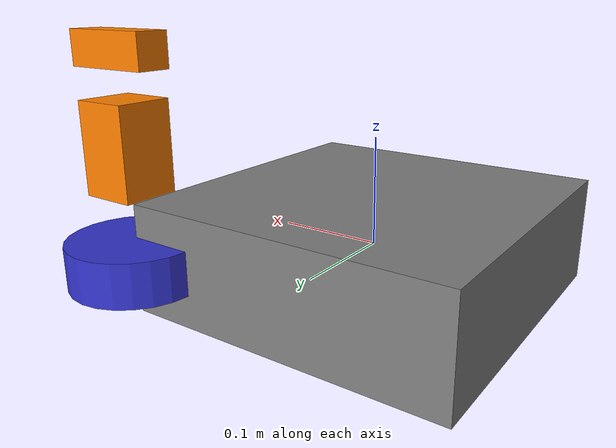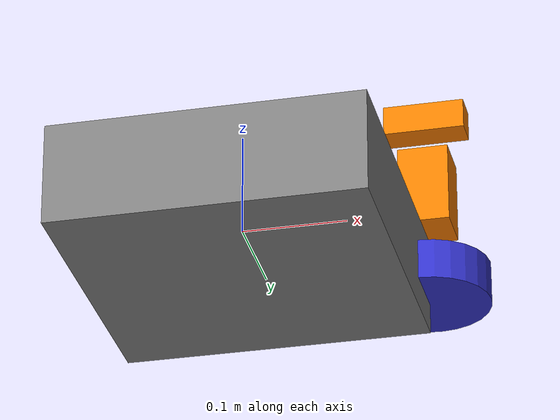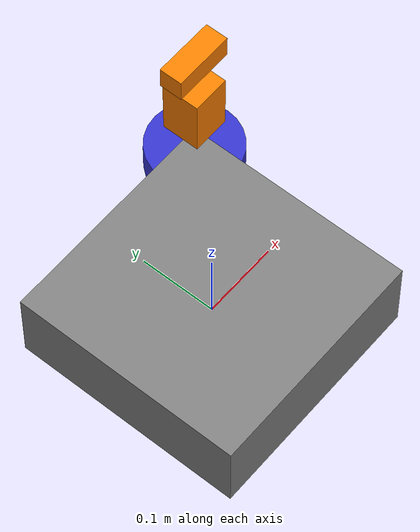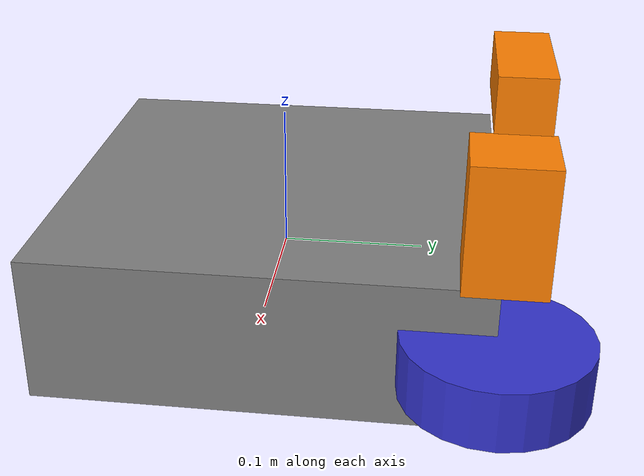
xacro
<?xml version="1.0"?>
<robot xmlns:xacro="http://www.ros.org/wiki/xacro" name="hybrid_robot_3servo">

  <!-- Base link -->
  <link name="base_link">
    <visual>
      <geometry>
        <box size="0.3 0.3 0.1"/>
      </geometry>
      <material name="gray">
        <color rgba="0.5 0.5 0.5 1.0"/>
      </material>
    </visual>
    <collision>
      <geometry>
        <box size="0.3 0.3 0.1"/>
      </geometry>
    </collision>
    <inertial>
      <mass value="1.0"/>
      <inertia ixx="0.01" ixy="0.0" ixz="0.0" iyy="0.01" iyz="0.0" izz="0.01"/>
    </inertial>
  </link>

  <!-- Wheel link (driving servo) -->
  <link name="wheel_fl_link">
    <visual>
      <geometry>
        <cylinder radius="0.06" length="0.04"/>
      </geometry>
      <material name="blue">
        <color rgba="0.2 0.2 0.8 1.0"/>
      </material>
    </visual>
    <collision>
      <geometry>
        <cylinder radius="0.06" length="0.04"/>
      </geometry>
    </collision>
    <inertial>
      <mass value="0.2"/>
      <inertia ixx="0.0001" ixy="0.0" ixz="0.0" iyy="0.0001" iyz="0.0" izz="0.0001"/>
    </inertial>
  </link>

  <!-- Driving joint (continuous rotation) -->
  <joint name="wheel_fl_joint" type="continuous">
    <parent link="base_link"/>
    <child link="wheel_fl_link"/>
    <origin xyz="0.15 0.15 0" rpy="0 0 0"/>
    <axis xyz="0 1 0"/>
  </joint>

  <!-- Pan mechanism link -->
  <link name="pan_fl_link">
    <visual>
      <geometry>
        <box size="0.05 0.05 0.08"/>
      </geometry>
      <material name="orange">
        <color rgba="1.0 0.5 0.0 1.0"/>
      </material>
    </visual>
    <collision>
      <geometry>
        <box size="0.05 0.05 0.08"/>
      </geometry>
    </collision>
    <inertial>
      <mass value="0.1"/>
      <inertia ixx="0.00001" ixy="0.0" ixz="0.0" iyy="0.00001" iyz="0.0" izz="0.00001"/>
    </inertial>
  </link>

  <!-- Pan joint (revolute - horizontal rotation) -->
  <joint name="pan_fl_joint" type="revolute">
    <parent link="base_link"/>
    <child link="pan_fl_link"/>
    <origin xyz="0.15 0.15 0.1" rpy="0 0 0"/>
    <axis xyz="0 0 1"/>
    <limit lower="-1.57" upper="1.57" effort="10.0" velocity="3.14"/>
  </joint>

  <!-- Tilt mechanism link -->
  <link name="tilt_fl_link">
    <visual>
      <geometry>
        <box size="0.08 0.03 0.03"/>
      </geometry>
      <material name="orange">
        <color rgba="1.0 0.5 0.0 1.0"/>
      </material>
    </visual>
    <collision>
      <geometry>
        <box size="0.08 0.03 0.03"/>
      </geometry>
    </collision>
    <inertial>
      <mass value="0.08"/>
      <inertia ixx="0.00001" ixy="0.0" ixz="0.0" iyy="0.00001" iyz="0.0" izz="0.00001"/>
    </inertial>
  </link>

  <!-- Tilt joint (revolute - vertical rotation) -->
  <joint name="tilt_fl_joint" type="revolute">
    <parent link="pan_fl_link"/>
    <child link="tilt_fl_link"/>
    <origin xyz="0 0 0.08" rpy="0 0 0"/>
    <axis xyz="0 1 0"/>
    <limit lower="-0.785" upper="0.785" effort="10.0" velocity="3.14"/>
  </joint>

  <!-- ros2_control hardware interface -->
  <ros2_control name="ST3215Hardware" type="system">
    <hardware>
      <plugin>mock_components/GenericSystem</plugin>
      <param name="port">/dev/ttyUSB0</param>
    </hardware>

    <!-- Driving joint (velocity control) -->
    <joint name="wheel_fl_joint">
      <command_interface name="velocity">
        <param name="min">-10.0</param>
        <param name="max">10.0</param>
      </command_interface>
      <state_interface name="position"/>
      <state_interface name="velocity"/>
      <param name="servo_id">1</param>
      <param name="mode">velocity</param>
    </joint>

    <!-- Pan joint (position control) -->
    <joint name="pan_fl_joint">
      <command_interface name="position">
        <param name="min">-1.57</param>
        <param name="max">1.57</param>
      </command_interface>
      <state_interface name="position"/>
      <state_interface name="velocity"/>
      <param name="servo_id">3</param>
      <param name="mode">position</param>
    </joint>

    <!-- Tilt joint (position control) -->
    <joint name="tilt_fl_joint">
      <command_interface name="position">
        <param name="min">-0.785</param>
        <param name="max">0.785</param>
      </command_interface>
      <state_interface name="position"/>
      <state_interface name="velocity"/>
      <param name="servo_id">4</param>
      <param name="mode">position</param>
    </joint>

  </ros2_control>

</robot>
